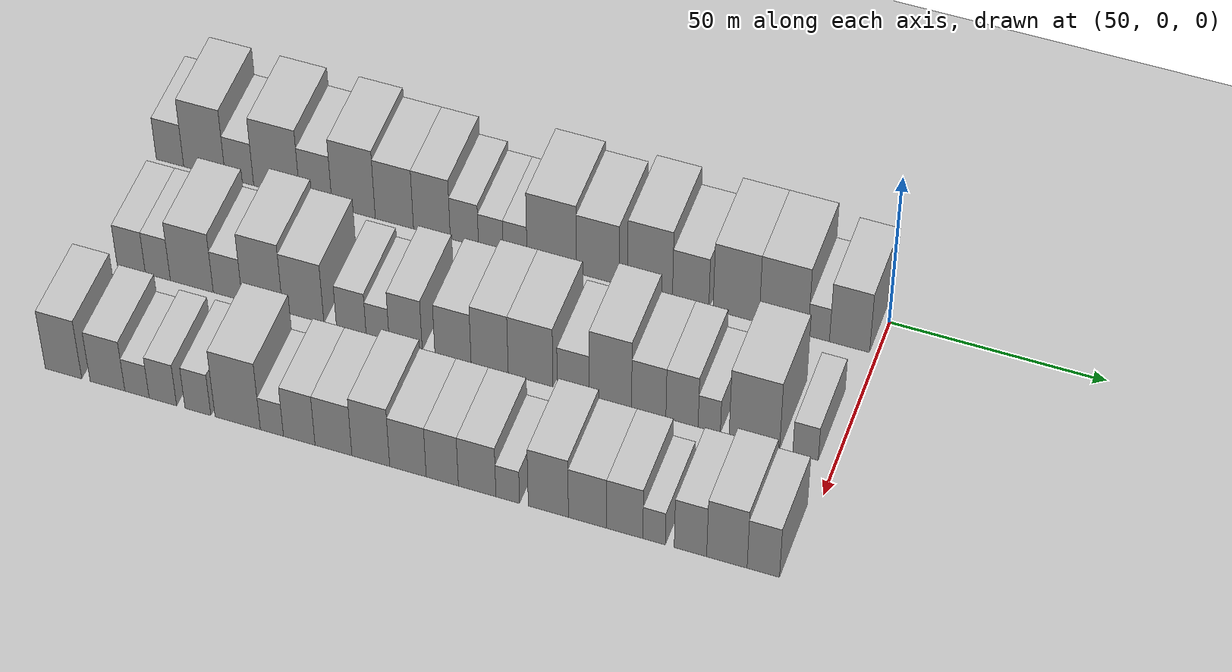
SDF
<sdf version="1.6">
 <world name="default">
  <include><name>ground_plane_1</name><uri>model://HANNAS_ground_plane</uri></include>
  <include>
   <name>ground_plane_2</name>
   <uri>model://HANNAS_ground_plane</uri>
   <pose>100 0 0  0 0 0</pose>
  </include>
  <model name="building_21">
   <static>1</static>
   <pose>50.0000 -169.8857 0 0.000000 0.000000 0.000000</pose>
   <link name="link">
    <pose>0 0 7.50 0 0 0</pose>
    <collision name="collision"><geometry><box><size>20.0000 6.8331 15.0000</size></box></geometry></collision>
    <visual name="visual">
     <cast_shadows>0</cast_shadows>
     <geometry><box><size>20.0000 6.8331 15.0000</size></box></geometry>
     <material>
      <script>
       <uri>model://HANNAS_wall/materials/scripts</uri>
       <uri>model://HANNAS_wall/materials/textures</uri>
       <name>vrc/HANNAS_wall</name>
      </script>
     </material>
    </visual>
   </link>
  </model>
  <model name="building_22">
   <static>1</static>
   <pose>50.0000 -161.2846 0 0.000000 0.000000 0.000000</pose>
   <link name="link">
    <pose>0 0 12.00 0 0 0</pose>
    <collision name="collision"><geometry><box><size>20.0000 10.3690 24.0000</size></box></geometry></collision>
    <visual name="visual">
     <cast_shadows>0</cast_shadows>
     <geometry><box><size>20.0000 10.3690 24.0000</size></box></geometry>
     <material>
      <script>
       <uri>model://HANNAS_wall/materials/scripts</uri>
       <uri>model://HANNAS_wall/materials/textures</uri>
       <name>vrc/HANNAS_wall</name>
      </script>
     </material>
    </visual>
   </link>
  </model>
  <model name="building_23">
   <static>1</static>
   <pose>50.0000 -152.5934 0 0.000000 0.000000 0.000000</pose>
   <link name="link">
    <pose>0 0 7.50 0 0 0</pose>
    <collision name="collision"><geometry><box><size>20.0000 7.0134 15.0000</size></box></geometry></collision>
    <visual name="visual">
     <cast_shadows>0</cast_shadows>
     <geometry><box><size>20.0000 7.0134 15.0000</size></box></geometry>
     <material>
      <script>
       <uri>model://HANNAS_wall/materials/scripts</uri>
       <uri>model://HANNAS_wall/materials/textures</uri>
       <name>vrc/HANNAS_wall</name>
      </script>
     </material>
    </visual>
   </link>
  </model>
  <model name="building_24">
   <static>1</static>
   <pose>50.0000 -143.3795 0 0.000000 0.000000 0.000000</pose>
   <link name="link">
    <pose>0 0 12.00 0 0 0</pose>
    <collision name="collision"><geometry><box><size>20.0000 11.4144 24.0000</size></box></geometry></collision>
    <visual name="visual">
     <cast_shadows>0</cast_shadows>
     <geometry><box><size>20.0000 11.4144 24.0000</size></box></geometry>
     <material>
      <script>
       <uri>model://HANNAS_wall/materials/scripts</uri>
       <uri>model://HANNAS_wall/materials/textures</uri>
       <name>vrc/HANNAS_wall</name>
      </script>
     </material>
    </visual>
   </link>
  </model>
  <model name="building_25">
   <static>1</static>
   <pose>50.0000 -133.7140 0 0.000000 0.000000 0.000000</pose>
   <link name="link">
    <pose>0 0 9.00 0 0 0</pose>
    <collision name="collision"><geometry><box><size>20.0000 7.9168 18.0000</size></box></geometry></collision>
    <visual name="visual">
     <cast_shadows>0</cast_shadows>
     <geometry><box><size>20.0000 7.9168 18.0000</size></box></geometry>
     <material>
      <script>
       <uri>model://HANNAS_wall/materials/scripts</uri>
       <uri>model://HANNAS_wall/materials/textures</uri>
       <name>vrc/HANNAS_wall</name>
      </script>
     </material>
    </visual>
   </link>
  </model>
  <model name="building_26">
   <static>1</static>
   <pose>50.0000 -124.4781 0 0.000000 0.000000 0.000000</pose>
   <link name="link">
    <pose>0 0 12.00 0 0 0</pose>
    <collision name="collision"><geometry><box><size>20.0000 10.5550 24.0000</size></box></geometry></collision>
    <visual name="visual">
     <cast_shadows>0</cast_shadows>
     <geometry><box><size>20.0000 10.5550 24.0000</size></box></geometry>
     <material>
      <script>
       <uri>model://HANNAS_wall/materials/scripts</uri>
       <uri>model://HANNAS_wall/materials/textures</uri>
       <name>vrc/HANNAS_wall</name>
      </script>
     </material>
    </visual>
   </link>
  </model>
  <model name="building_27">
   <static>1</static>
   <pose>50.0000 -114.5449 0 0.000000 0.000000 0.000000</pose>
   <link name="link">
    <pose>0 0 10.50 0 0 0</pose>
    <collision name="collision"><geometry><box><size>20.0000 9.3114 21.0000</size></box></geometry></collision>
    <visual name="visual">
     <cast_shadows>0</cast_shadows>
     <geometry><box><size>20.0000 9.3114 21.0000</size></box></geometry>
     <material>
      <script>
       <uri>model://HANNAS_wall/materials/scripts</uri>
       <uri>model://HANNAS_wall/materials/textures</uri>
       <name>vrc/HANNAS_wall</name>
      </script>
     </material>
    </visual>
   </link>
  </model>
  <model name="building_28">
   <static>1</static>
   <pose>50.0000 -105.4226 0 0.000000 0.000000 0.000000</pose>
   <link name="link">
    <pose>0 0 10.50 0 0 0</pose>
    <collision name="collision"><geometry><box><size>20.0000 8.9332 21.0000</size></box></geometry></collision>
    <visual name="visual">
     <cast_shadows>0</cast_shadows>
     <geometry><box><size>20.0000 8.9332 21.0000</size></box></geometry>
     <material>
      <script>
       <uri>model://HANNAS_wall/materials/scripts</uri>
       <uri>model://HANNAS_wall/materials/textures</uri>
       <name>vrc/HANNAS_wall</name>
      </script>
     </material>
    </visual>
   </link>
  </model>
  <model name="building_29">
   <static>1</static>
   <pose>50.0000 -97.5492 0 0.000000 0.000000 0.000000</pose>
   <link name="link">
    <pose>0 0 7.50 0 0 0</pose>
    <collision name="collision"><geometry><box><size>20.0000 6.8135 15.0000</size></box></geometry></collision>
    <visual name="visual">
     <cast_shadows>0</cast_shadows>
     <geometry><box><size>20.0000 6.8135 15.0000</size></box></geometry>
     <material>
      <script>
       <uri>model://HANNAS_wall/materials/scripts</uri>
       <uri>model://HANNAS_wall/materials/textures</uri>
       <name>vrc/HANNAS_wall</name>
      </script>
     </material>
    </visual>
   </link>
  </model>
  <model name="building_30">
   <static>1</static>
   <pose>50.0000 -91.1669 0 0.000000 0.000000 0.000000</pose>
   <link name="link">
    <pose>0 0 6.00 0 0 0</pose>
    <collision name="collision"><geometry><box><size>20.0000 5.9512 12.0000</size></box></geometry></collision>
    <visual name="visual">
     <cast_shadows>0</cast_shadows>
     <geometry><box><size>20.0000 5.9512 12.0000</size></box></geometry>
     <material>
      <script>
       <uri>model://HANNAS_wall/materials/scripts</uri>
       <uri>model://HANNAS_wall/materials/textures</uri>
       <name>vrc/HANNAS_wall</name>
      </script>
     </material>
    </visual>
   </link>
  </model>
  <model name="building_31">
   <static>1</static>
   <pose>50.0000 -85.3227 0 0.000000 0.000000 0.000000</pose>
   <link name="link">
    <pose>0 0 6.00 0 0 0</pose>
    <collision name="collision"><geometry><box><size>20.0000 5.7373 12.0000</size></box></geometry></collision>
    <visual name="visual">
     <cast_shadows>0</cast_shadows>
     <geometry><box><size>20.0000 5.7373 12.0000</size></box></geometry>
     <material>
      <script>
       <uri>model://HANNAS_wall/materials/scripts</uri>
       <uri>model://HANNAS_wall/materials/textures</uri>
       <name>vrc/HANNAS_wall</name>
      </script>
     </material>
    </visual>
   </link>
  </model>
  <model name="building_32">
   <static>1</static>
   <pose>50.0000 -76.5606 0 0.000000 0.000000 0.000000</pose>
   <link name="link">
    <pose>0 0 12.00 0 0 0</pose>
    <collision name="collision"><geometry><box><size>20.0000 11.7869 24.0000</size></box></geometry></collision>
    <visual name="visual">
     <cast_shadows>0</cast_shadows>
     <geometry><box><size>20.0000 11.7869 24.0000</size></box></geometry>
     <material>
      <script>
       <uri>model://HANNAS_wall/materials/scripts</uri>
       <uri>model://HANNAS_wall/materials/textures</uri>
       <name>vrc/HANNAS_wall</name>
      </script>
     </material>
    </visual>
   </link>
  </model>
  <model name="building_33">
   <static>1</static>
   <pose>50.0000 -65.5754 0 0.000000 0.000000 0.000000</pose>
   <link name="link">
    <pose>0 0 10.50 0 0 0</pose>
    <collision name="collision"><geometry><box><size>20.0000 10.1834 21.0000</size></box></geometry></collision>
    <visual name="visual">
     <cast_shadows>0</cast_shadows>
     <geometry><box><size>20.0000 10.1834 21.0000</size></box></geometry>
     <material>
      <script>
       <uri>model://HANNAS_wall/materials/scripts</uri>
       <uri>model://HANNAS_wall/materials/textures</uri>
       <name>vrc/HANNAS_wall</name>
      </script>
     </material>
    </visual>
   </link>
  </model>
  <model name="building_34">
   <static>1</static>
   <pose>50.0000 -53.1653 0 0.000000 0.000000 0.000000</pose>
   <link name="link">
    <pose>0 0 12.00 0 0 0</pose>
    <collision name="collision"><geometry><box><size>20.0000 10.6368 24.0000</size></box></geometry></collision>
    <visual name="visual">
     <cast_shadows>0</cast_shadows>
     <geometry><box><size>20.0000 10.6368 24.0000</size></box></geometry>
     <material>
      <script>
       <uri>model://HANNAS_wall/materials/scripts</uri>
       <uri>model://HANNAS_wall/materials/textures</uri>
       <name>vrc/HANNAS_wall</name>
      </script>
     </material>
    </visual>
   </link>
  </model>
  <model name="building_35">
   <static>1</static>
   <pose>50.0000 -43.5579 0 0.000000 0.000000 0.000000</pose>
   <link name="link">
    <pose>0 0 9.00 0 0 0</pose>
    <collision name="collision"><geometry><box><size>20.0000 8.5779 18.0000</size></box></geometry></collision>
    <visual name="visual">
     <cast_shadows>0</cast_shadows>
     <geometry><box><size>20.0000 8.5779 18.0000</size></box></geometry>
     <material>
      <script>
       <uri>model://HANNAS_wall/materials/scripts</uri>
       <uri>model://HANNAS_wall/materials/textures</uri>
       <name>vrc/HANNAS_wall</name>
      </script>
     </material>
    </visual>
   </link>
  </model>
  <model name="building_36">
   <static>1</static>
   <pose>50.0000 -32.8664 0 0.000000 0.000000 0.000000</pose>
   <link name="link">
    <pose>0 0 12.00 0 0 0</pose>
    <collision name="collision"><geometry><box><size>20.0000 10.8051 24.0000</size></box></geometry></collision>
    <visual name="visual">
     <cast_shadows>0</cast_shadows>
     <geometry><box><size>20.0000 10.8051 24.0000</size></box></geometry>
     <material>
      <script>
       <uri>model://HANNAS_wall/materials/scripts</uri>
       <uri>model://HANNAS_wall/materials/textures</uri>
       <name>vrc/HANNAS_wall</name>
      </script>
     </material>
    </visual>
   </link>
  </model>
  <model name="building_37">
   <static>1</static>
   <pose>50.0000 -21.7463 0 0.000000 0.000000 0.000000</pose>
   <link name="link">
    <pose>0 0 12.00 0 0 0</pose>
    <collision name="collision"><geometry><box><size>20.0000 11.4351 24.0000</size></box></geometry></collision>
    <visual name="visual">
     <cast_shadows>0</cast_shadows>
     <geometry><box><size>20.0000 11.4351 24.0000</size></box></geometry>
     <material>
      <script>
       <uri>model://HANNAS_wall/materials/scripts</uri>
       <uri>model://HANNAS_wall/materials/textures</uri>
       <name>vrc/HANNAS_wall</name>
      </script>
     </material>
    </visual>
   </link>
  </model>
  <model name="building_38">
   <static>1</static>
   <pose>50.0000 -13.5464 0 0.000000 0.000000 0.000000</pose>
   <link name="link">
    <pose>0 0 6.00 0 0 0</pose>
    <collision name="collision"><geometry><box><size>20.0000 4.9647 12.0000</size></box></geometry></collision>
    <visual name="visual">
     <cast_shadows>0</cast_shadows>
     <geometry><box><size>20.0000 4.9647 12.0000</size></box></geometry>
     <material>
      <script>
       <uri>model://HANNAS_wall/materials/scripts</uri>
       <uri>model://HANNAS_wall/materials/textures</uri>
       <name>vrc/HANNAS_wall</name>
      </script>
     </material>
    </visual>
   </link>
  </model>
  <model name="building_39">
   <static>1</static>
   <pose>50.0000 -6.4046 0 0.000000 0.000000 0.000000</pose>
   <link name="link">
    <pose>0 0 10.50 0 0 0</pose>
    <collision name="collision"><geometry><box><size>20.0000 9.3189 21.0000</size></box></geometry></collision>
    <visual name="visual">
     <cast_shadows>0</cast_shadows>
     <geometry><box><size>20.0000 9.3189 21.0000</size></box></geometry>
     <material>
      <script>
       <uri>model://HANNAS_wall/materials/scripts</uri>
       <uri>model://HANNAS_wall/materials/textures</uri>
       <name>vrc/HANNAS_wall</name>
      </script>
     </material>
    </visual>
   </link>
  </model>
  <model name="building_100">
   <static>1</static>
   <pose>82.0000 -165.7786 0 0.000000 0.000000 0.000000</pose>
   <link name="link">
    <pose>0 0 7.50 0 0 0</pose>
    <collision name="collision"><geometry><box><size>20.0000 6.8896 15.0000</size></box></geometry></collision>
    <visual name="visual">
     <cast_shadows>0</cast_shadows>
     <geometry><box><size>20.0000 6.8896 15.0000</size></box></geometry>
     <material>
      <script>
       <uri>model://HANNAS_wall/materials/scripts</uri>
       <uri>model://HANNAS_wall/materials/textures</uri>
       <name>vrc/HANNAS_wall</name>
      </script>
     </material>
    </visual>
   </link>
  </model>
  <model name="building_101">
   <static>1</static>
   <pose>82.0000 -159.2787 0 0.000000 0.000000 0.000000</pose>
   <link name="link">
    <pose>0 0 7.50 0 0 0</pose>
    <collision name="collision"><geometry><box><size>20.0000 6.1103 15.0000</size></box></geometry></collision>
    <visual name="visual">
     <cast_shadows>0</cast_shadows>
     <geometry><box><size>20.0000 6.1103 15.0000</size></box></geometry>
     <material>
      <script>
       <uri>model://HANNAS_wall/materials/scripts</uri>
       <uri>model://HANNAS_wall/materials/textures</uri>
       <name>vrc/HANNAS_wall</name>
      </script>
     </material>
    </visual>
   </link>
  </model>
  <model name="building_102">
   <static>1</static>
   <pose>82.0000 -151.0069 0 0.000000 0.000000 0.000000</pose>
   <link name="link">
    <pose>0 0 10.50 0 0 0</pose>
    <collision name="collision"><geometry><box><size>20.0000 10.4333 21.0000</size></box></geometry></collision>
    <visual name="visual">
     <cast_shadows>0</cast_shadows>
     <geometry><box><size>20.0000 10.4333 21.0000</size></box></geometry>
     <material>
      <script>
       <uri>model://HANNAS_wall/materials/scripts</uri>
       <uri>model://HANNAS_wall/materials/textures</uri>
       <name>vrc/HANNAS_wall</name>
      </script>
     </material>
    </visual>
   </link>
  </model>
  <model name="building_103">
   <static>1</static>
   <pose>82.0000 -142.2782 0 0.000000 0.000000 0.000000</pose>
   <link name="link">
    <pose>0 0 7.50 0 0 0</pose>
    <collision name="collision"><geometry><box><size>20.0000 7.0240 15.0000</size></box></geometry></collision>
    <visual name="visual">
     <cast_shadows>0</cast_shadows>
     <geometry><box><size>20.0000 7.0240 15.0000</size></box></geometry>
     <material>
      <script>
       <uri>model://HANNAS_wall/materials/scripts</uri>
       <uri>model://HANNAS_wall/materials/textures</uri>
       <name>vrc/HANNAS_wall</name>
      </script>
     </material>
    </visual>
   </link>
  </model>
  <model name="building_104">
   <static>1</static>
   <pose>82.0000 -133.8685 0 0.000000 0.000000 0.000000</pose>
   <link name="link">
    <pose>0 0 12.00 0 0 0</pose>
    <collision name="collision"><geometry><box><size>20.0000 9.7954 24.0000</size></box></geometry></collision>
    <visual name="visual">
     <cast_shadows>0</cast_shadows>
     <geometry><box><size>20.0000 9.7954 24.0000</size></box></geometry>
     <material>
      <script>
       <uri>model://HANNAS_wall/materials/scripts</uri>
       <uri>model://HANNAS_wall/materials/textures</uri>
       <name>vrc/HANNAS_wall</name>
      </script>
     </material>
    </visual>
   </link>
  </model>
  <model name="building_105">
   <static>1</static>
   <pose>82.0000 -124.0394 0 0.000000 0.000000 0.000000</pose>
   <link name="link">
    <pose>0 0 10.50 0 0 0</pose>
    <collision name="collision"><geometry><box><size>20.0000 9.8627 21.0000</size></box></geometry></collision>
    <visual name="visual">
     <cast_shadows>0</cast_shadows>
     <geometry><box><size>20.0000 9.8627 21.0000</size></box></geometry>
     <material>
      <script>
       <uri>model://HANNAS_wall/materials/scripts</uri>
       <uri>model://HANNAS_wall/materials/textures</uri>
       <name>vrc/HANNAS_wall</name>
      </script>
     </material>
    </visual>
   </link>
  </model>
  <model name="building_106">
   <static>1</static>
   <pose>82.0000 -112.5568 0 0.000000 0.000000 0.000000</pose>
   <link name="link">
    <pose>0 0 7.50 0 0 0</pose>
    <collision name="collision"><geometry><box><size>20.0000 7.1024 15.0000</size></box></geometry></collision>
    <visual name="visual">
     <cast_shadows>0</cast_shadows>
     <geometry><box><size>20.0000 7.1024 15.0000</size></box></geometry>
     <material>
      <script>
       <uri>model://HANNAS_wall/materials/scripts</uri>
       <uri>model://HANNAS_wall/materials/textures</uri>
       <name>vrc/HANNAS_wall</name>
      </script>
     </material>
    </visual>
   </link>
  </model>
  <model name="building_107">
   <static>1</static>
   <pose>82.0000 -106.2558 0 0.000000 0.000000 0.000000</pose>
   <link name="link">
    <pose>0 0 6.00 0 0 0</pose>
    <collision name="collision"><geometry><box><size>20.0000 5.4996 12.0000</size></box></geometry></collision>
    <visual name="visual">
     <cast_shadows>0</cast_shadows>
     <geometry><box><size>20.0000 5.4996 12.0000</size></box></geometry>
     <material>
      <script>
       <uri>model://HANNAS_wall/materials/scripts</uri>
       <uri>model://HANNAS_wall/materials/textures</uri>
       <name>vrc/HANNAS_wall</name>
      </script>
     </material>
    </visual>
   </link>
  </model>
  <model name="building_108">
   <static>1</static>
   <pose>82.0000 -99.5862 0 0.000000 0.000000 0.000000</pose>
   <link name="link">
    <pose>0 0 9.00 0 0 0</pose>
    <collision name="collision"><geometry><box><size>20.0000 7.8396 18.0000</size></box></geometry></collision>
    <visual name="visual">
     <cast_shadows>0</cast_shadows>
     <geometry><box><size>20.0000 7.8396 18.0000</size></box></geometry>
     <material>
      <script>
       <uri>model://HANNAS_wall/materials/scripts</uri>
       <uri>model://HANNAS_wall/materials/textures</uri>
       <name>vrc/HANNAS_wall</name>
      </script>
     </material>
    </visual>
   </link>
  </model>
  <model name="building_109">
   <static>1</static>
   <pose>82.0000 -88.3826 0 0.000000 0.000000 0.000000</pose>
   <link name="link">
    <pose>0 0 9.00 0 0 0</pose>
    <collision name="collision"><geometry><box><size>20.0000 8.5676 18.0000</size></box></geometry></collision>
    <visual name="visual">
     <cast_shadows>0</cast_shadows>
     <geometry><box><size>20.0000 8.5676 18.0000</size></box></geometry>
     <material>
      <script>
       <uri>model://HANNAS_wall/materials/scripts</uri>
       <uri>model://HANNAS_wall/materials/textures</uri>
       <name>vrc/HANNAS_wall</name>
      </script>
     </material>
    </visual>
   </link>
  </model>
  <model name="building_110">
   <static>1</static>
   <pose>82.0000 -79.7298 0 0.000000 0.000000 0.000000</pose>
   <link name="link">
    <pose>0 0 10.50 0 0 0</pose>
    <collision name="collision"><geometry><box><size>20.0000 8.7380 21.0000</size></box></geometry></collision>
    <visual name="visual">
     <cast_shadows>0</cast_shadows>
     <geometry><box><size>20.0000 8.7380 21.0000</size></box></geometry>
     <material>
      <script>
       <uri>model://HANNAS_wall/materials/scripts</uri>
       <uri>model://HANNAS_wall/materials/textures</uri>
       <name>vrc/HANNAS_wall</name>
      </script>
     </material>
    </visual>
   </link>
  </model>
  <model name="building_111">
   <static>1</static>
   <pose>82.0000 -70.1274 0 0.000000 0.000000 0.000000</pose>
   <link name="link">
    <pose>0 0 10.50 0 0 0</pose>
    <collision name="collision"><geometry><box><size>20.0000 10.4667 21.0000</size></box></geometry></collision>
    <visual name="visual">
     <cast_shadows>0</cast_shadows>
     <geometry><box><size>20.0000 10.4667 21.0000</size></box></geometry>
     <material>
      <script>
       <uri>model://HANNAS_wall/materials/scripts</uri>
       <uri>model://HANNAS_wall/materials/textures</uri>
       <name>vrc/HANNAS_wall</name>
      </script>
     </material>
    </visual>
   </link>
  </model>
  <model name="building_112">
   <static>1</static>
   <pose>82.0000 -60.1732 0 0.000000 0.000000 0.000000</pose>
   <link name="link">
    <pose>0 0 7.50 0 0 0</pose>
    <collision name="collision"><geometry><box><size>20.0000 7.4416 15.0000</size></box></geometry></collision>
    <visual name="visual">
     <cast_shadows>0</cast_shadows>
     <geometry><box><size>20.0000 7.4416 15.0000</size></box></geometry>
     <material>
      <script>
       <uri>model://HANNAS_wall/materials/scripts</uri>
       <uri>model://HANNAS_wall/materials/textures</uri>
       <name>vrc/HANNAS_wall</name>
      </script>
     </material>
    </visual>
   </link>
  </model>
  <model name="building_113">
   <static>1</static>
   <pose>82.0000 -51.5364 0 0.000000 0.000000 0.000000</pose>
   <link name="link">
    <pose>0 0 12.00 0 0 0</pose>
    <collision name="collision"><geometry><box><size>20.0000 9.8321 24.0000</size></box></geometry></collision>
    <visual name="visual">
     <cast_shadows>0</cast_shadows>
     <geometry><box><size>20.0000 9.8321 24.0000</size></box></geometry>
     <material>
      <script>
       <uri>model://HANNAS_wall/materials/scripts</uri>
       <uri>model://HANNAS_wall/materials/textures</uri>
       <name>vrc/HANNAS_wall</name>
      </script>
     </material>
    </visual>
   </link>
  </model>
  <model name="building_114">
   <static>1</static>
   <pose>82.0000 -42.6458 0 0.000000 0.000000 0.000000</pose>
   <link name="link">
    <pose>0 0 9.00 0 0 0</pose>
    <collision name="collision"><geometry><box><size>20.0000 7.9490 18.0000</size></box></geometry></collision>
    <visual name="visual">
     <cast_shadows>0</cast_shadows>
     <geometry><box><size>20.0000 7.9490 18.0000</size></box></geometry>
     <material>
      <script>
       <uri>model://HANNAS_wall/materials/scripts</uri>
       <uri>model://HANNAS_wall/materials/textures</uri>
       <name>vrc/HANNAS_wall</name>
      </script>
     </material>
    </visual>
   </link>
  </model>
  <model name="building_115">
   <static>1</static>
   <pose>82.0000 -34.9589 0 0.000000 0.000000 0.000000</pose>
   <link name="link">
    <pose>0 0 9.00 0 0 0</pose>
    <collision name="collision"><geometry><box><size>20.0000 7.4248 18.0000</size></box></geometry></collision>
    <visual name="visual">
     <cast_shadows>0</cast_shadows>
     <geometry><box><size>20.0000 7.4248 18.0000</size></box></geometry>
     <material>
      <script>
       <uri>model://HANNAS_wall/materials/scripts</uri>
       <uri>model://HANNAS_wall/materials/textures</uri>
       <name>vrc/HANNAS_wall</name>
      </script>
     </material>
    </visual>
   </link>
  </model>
  <model name="building_116">
   <static>1</static>
   <pose>82.0000 -28.6866 0 0.000000 0.000000 0.000000</pose>
   <link name="link">
    <pose>0 0 6.00 0 0 0</pose>
    <collision name="collision"><geometry><box><size>20.0000 5.1197 12.0000</size></box></geometry></collision>
    <visual name="visual">
     <cast_shadows>0</cast_shadows>
     <geometry><box><size>20.0000 5.1197 12.0000</size></box></geometry>
     <material>
      <script>
       <uri>model://HANNAS_wall/materials/scripts</uri>
       <uri>model://HANNAS_wall/materials/textures</uri>
       <name>vrc/HANNAS_wall</name>
      </script>
     </material>
    </visual>
   </link>
  </model>
  <model name="building_117">
   <static>1</static>
   <pose>82.0000 -18.3527 0 0.000000 0.000000 0.000000</pose>
   <link name="link">
    <pose>0 0 12.00 0 0 0</pose>
    <collision name="collision"><geometry><box><size>20.0000 11.5481 24.0000</size></box></geometry></collision>
    <visual name="visual">
     <cast_shadows>0</cast_shadows>
     <geometry><box><size>20.0000 11.5481 24.0000</size></box></geometry>
     <material>
      <script>
       <uri>model://HANNAS_wall/materials/scripts</uri>
       <uri>model://HANNAS_wall/materials/textures</uri>
       <name>vrc/HANNAS_wall</name>
      </script>
     </material>
    </visual>
   </link>
  </model>
  <model name="building_118">
   <static>1</static>
   <pose>82.0000 -6.6771 0 0.000000 0.000000 0.000000</pose>
   <link name="link">
    <pose>0 0 6.00 0 0 0</pose>
    <collision name="collision"><geometry><box><size>20.0000 5.8031 12.0000</size></box></geometry></collision>
    <visual name="visual">
     <cast_shadows>0</cast_shadows>
     <geometry><box><size>20.0000 5.8031 12.0000</size></box></geometry>
     <material>
      <script>
       <uri>model://HANNAS_wall/materials/scripts</uri>
       <uri>model://HANNAS_wall/materials/textures</uri>
       <name>vrc/HANNAS_wall</name>
      </script>
     </material>
    </visual>
   </link>
  </model>
  <model name="building_178">
   <static>1</static>
   <pose>114.0000 -168.2316 0 0.000000 0.000000 0.000000</pose>
   <link name="link">
    <pose>0 0 10.50 0 0 0</pose>
    <collision name="collision"><geometry><box><size>20.0000 8.7683 21.0000</size></box></geometry></collision>
    <visual name="visual">
     <cast_shadows>0</cast_shadows>
     <geometry><box><size>20.0000 8.7683 21.0000</size></box></geometry>
     <material>
      <script>
       <uri>model://HANNAS_wall/materials/scripts</uri>
       <uri>model://HANNAS_wall/materials/textures</uri>
       <name>vrc/HANNAS_wall</name>
      </script>
     </material>
    </visual>
   </link>
  </model>
  <model name="building_179">
   <static>1</static>
   <pose>114.0000 -157.6815 0 0.000000 0.000000 0.000000</pose>
   <link name="link">
    <pose>0 0 9.00 0 0 0</pose>
    <collision name="collision"><geometry><box><size>20.0000 8.3320 18.0000</size></box></geometry></collision>
    <visual name="visual">
     <cast_shadows>0</cast_shadows>
     <geometry><box><size>20.0000 8.3320 18.0000</size></box></geometry>
     <material>
      <script>
       <uri>model://HANNAS_wall/materials/scripts</uri>
       <uri>model://HANNAS_wall/materials/textures</uri>
       <name>vrc/HANNAS_wall</name>
      </script>
     </material>
    </visual>
   </link>
  </model>
  <model name="building_180">
   <static>1</static>
   <pose>114.0000 -150.6192 0 0.000000 0.000000 0.000000</pose>
   <link name="link">
    <pose>0 0 6.00 0 0 0</pose>
    <collision name="collision"><geometry><box><size>20.0000 5.7927 12.0000</size></box></geometry></collision>
    <visual name="visual">
     <cast_shadows>0</cast_shadows>
     <geometry><box><size>20.0000 5.7927 12.0000</size></box></geometry>
     <material>
      <script>
       <uri>model://HANNAS_wall/materials/scripts</uri>
       <uri>model://HANNAS_wall/materials/textures</uri>
       <name>vrc/HANNAS_wall</name>
      </script>
     </material>
    </visual>
   </link>
  </model>
  <model name="building_181">
   <static>1</static>
   <pose>114.0000 -144.4515 0 0.000000 0.000000 0.000000</pose>
   <link name="link">
    <pose>0 0 7.50 0 0 0</pose>
    <collision name="collision"><geometry><box><size>20.0000 6.5427 15.0000</size></box></geometry></collision>
    <visual name="visual">
     <cast_shadows>0</cast_shadows>
     <geometry><box><size>20.0000 6.5427 15.0000</size></box></geometry>
     <material>
      <script>
       <uri>model://HANNAS_wall/materials/scripts</uri>
       <uri>model://HANNAS_wall/materials/textures</uri>
       <name>vrc/HANNAS_wall</name>
      </script>
     </material>
    </visual>
   </link>
  </model>
  <model name="building_182">
   <static>1</static>
   <pose>114.0000 -136.1171 0 0.000000 0.000000 0.000000</pose>
   <link name="link">
    <pose>0 0 7.50 0 0 0</pose>
    <collision name="collision"><geometry><box><size>20.0000 6.1261 15.0000</size></box></geometry></collision>
    <visual name="visual">
     <cast_shadows>0</cast_shadows>
     <geometry><box><size>20.0000 6.1261 15.0000</size></box></geometry>
     <material>
      <script>
       <uri>model://HANNAS_wall/materials/scripts</uri>
       <uri>model://HANNAS_wall/materials/textures</uri>
       <name>vrc/HANNAS_wall</name>
      </script>
     </material>
    </visual>
   </link>
  </model>
  <model name="building_183">
   <static>1</static>
   <pose>114.0000 -126.7068 0 0.000000 0.000000 0.000000</pose>
   <link name="link">
    <pose>0 0 12.00 0 0 0</pose>
    <collision name="collision"><geometry><box><size>20.0000 10.6946 24.0000</size></box></geometry></collision>
    <visual name="visual">
     <cast_shadows>0</cast_shadows>
     <geometry><box><size>20.0000 10.6946 24.0000</size></box></geometry>
     <material>
      <script>
       <uri>model://HANNAS_wall/materials/scripts</uri>
       <uri>model://HANNAS_wall/materials/textures</uri>
       <name>vrc/HANNAS_wall</name>
      </script>
     </material>
    </visual>
   </link>
  </model>
  <model name="building_184">
   <static>1</static>
   <pose>114.0000 -118.6415 0 0.000000 0.000000 0.000000</pose>
   <link name="link">
    <pose>0 0 6.00 0 0 0</pose>
    <collision name="collision"><geometry><box><size>20.0000 5.4360 12.0000</size></box></geometry></collision>
    <visual name="visual">
     <cast_shadows>0</cast_shadows>
     <geometry><box><size>20.0000 5.4360 12.0000</size></box></geometry>
     <material>
      <script>
       <uri>model://HANNAS_wall/materials/scripts</uri>
       <uri>model://HANNAS_wall/materials/textures</uri>
       <name>vrc/HANNAS_wall</name>
      </script>
     </material>
    </visual>
   </link>
  </model>
  <model name="building_185">
   <static>1</static>
   <pose>114.0000 -112.2209 0 0.000000 0.000000 0.000000</pose>
   <link name="link">
    <pose>0 0 9.00 0 0 0</pose>
    <collision name="collision"><geometry><box><size>20.0000 7.4052 18.0000</size></box></geometry></collision>
    <visual name="visual">
     <cast_shadows>0</cast_shadows>
     <geometry><box><size>20.0000 7.4052 18.0000</size></box></geometry>
     <material>
      <script>
       <uri>model://HANNAS_wall/materials/scripts</uri>
       <uri>model://HANNAS_wall/materials/textures</uri>
       <name>vrc/HANNAS_wall</name>
      </script>
     </material>
    </visual>
   </link>
  </model>
  <model name="building_186">
   <static>1</static>
   <pose>114.0000 -104.2059 0 0.000000 0.000000 0.000000</pose>
   <link name="link">
    <pose>0 0 9.00 0 0 0</pose>
    <collision name="collision"><geometry><box><size>20.0000 8.6249 18.0000</size></box></geometry></collision>
    <visual name="visual">
     <cast_shadows>0</cast_shadows>
     <geometry><box><size>20.0000 8.6249 18.0000</size></box></geometry>
     <material>
      <script>
       <uri>model://HANNAS_wall/materials/scripts</uri>
       <uri>model://HANNAS_wall/materials/textures</uri>
       <name>vrc/HANNAS_wall</name>
      </script>
     </material>
    </visual>
   </link>
  </model>
  <model name="building_187">
   <static>1</static>
   <pose>114.0000 -95.5020 0 0.000000 0.000000 0.000000</pose>
   <link name="link">
    <pose>0 0 10.50 0 0 0</pose>
    <collision name="collision"><geometry><box><size>20.0000 8.7829 21.0000</size></box></geometry></collision>
    <visual name="visual">
     <cast_shadows>0</cast_shadows>
     <geometry><box><size>20.0000 8.7829 21.0000</size></box></geometry>
     <material>
      <script>
       <uri>model://HANNAS_wall/materials/scripts</uri>
       <uri>model://HANNAS_wall/materials/textures</uri>
       <name>vrc/HANNAS_wall</name>
      </script>
     </material>
    </visual>
   </link>
  </model>
  <model name="building_188">
   <static>1</static>
   <pose>114.0000 -86.8810 0 0.000000 0.000000 0.000000</pose>
   <link name="link">
    <pose>0 0 9.00 0 0 0</pose>
    <collision name="collision"><geometry><box><size>20.0000 8.4590 18.0000</size></box></geometry></collision>
    <visual name="visual">
     <cast_shadows>0</cast_shadows>
     <geometry><box><size>20.0000 8.4590 18.0000</size></box></geometry>
     <material>
      <script>
       <uri>model://HANNAS_wall/materials/scripts</uri>
       <uri>model://HANNAS_wall/materials/textures</uri>
       <name>vrc/HANNAS_wall</name>
      </script>
     </material>
    </visual>
   </link>
  </model>
  <model name="building_189">
   <static>1</static>
   <pose>114.0000 -78.9339 0 0.000000 0.000000 0.000000</pose>
   <link name="link">
    <pose>0 0 9.00 0 0 0</pose>
    <collision name="collision"><geometry><box><size>20.0000 7.4352 18.0000</size></box></geometry></collision>
    <visual name="visual">
     <cast_shadows>0</cast_shadows>
     <geometry><box><size>20.0000 7.4352 18.0000</size></box></geometry>
     <material>
      <script>
       <uri>model://HANNAS_wall/materials/scripts</uri>
       <uri>model://HANNAS_wall/materials/textures</uri>
       <name>vrc/HANNAS_wall</name>
      </script>
     </material>
    </visual>
   </link>
  </model>
  <model name="building_190">
   <static>1</static>
   <pose>114.0000 -70.9005 0 0.000000 0.000000 0.000000</pose>
   <link name="link">
    <pose>0 0 9.00 0 0 0</pose>
    <collision name="collision"><geometry><box><size>20.0000 8.6316 18.0000</size></box></geometry></collision>
    <visual name="visual">
     <cast_shadows>0</cast_shadows>
     <geometry><box><size>20.0000 8.6316 18.0000</size></box></geometry>
     <material>
      <script>
       <uri>model://HANNAS_wall/materials/scripts</uri>
       <uri>model://HANNAS_wall/materials/textures</uri>
       <name>vrc/HANNAS_wall</name>
      </script>
     </material>
    </visual>
   </link>
  </model>
  <model name="building_191">
   <static>1</static>
   <pose>114.0000 -63.8808 0 0.000000 0.000000 0.000000</pose>
   <link name="link">
    <pose>0 0 6.00 0 0 0</pose>
    <collision name="collision"><geometry><box><size>20.0000 5.4078 12.0000</size></box></geometry></collision>
    <visual name="visual">
     <cast_shadows>0</cast_shadows>
     <geometry><box><size>20.0000 5.4078 12.0000</size></box></geometry>
     <material>
      <script>
       <uri>model://HANNAS_wall/materials/scripts</uri>
       <uri>model://HANNAS_wall/materials/textures</uri>
       <name>vrc/HANNAS_wall</name>
      </script>
     </material>
    </visual>
   </link>
  </model>
  <model name="building_192">
   <static>1</static>
   <pose>114.0000 -54.6046 0 0.000000 0.000000 0.000000</pose>
   <link name="link">
    <pose>0 0 10.50 0 0 0</pose>
    <collision name="collision"><geometry><box><size>20.0000 9.1446 21.0000</size></box></geometry></collision>
    <visual name="visual">
     <cast_shadows>0</cast_shadows>
     <geometry><box><size>20.0000 9.1446 21.0000</size></box></geometry>
     <material>
      <script>
       <uri>model://HANNAS_wall/materials/scripts</uri>
       <uri>model://HANNAS_wall/materials/textures</uri>
       <name>vrc/HANNAS_wall</name>
      </script>
     </material>
    </visual>
   </link>
  </model>
  <model name="building_193">
   <static>1</static>
   <pose>114.0000 -45.7023 0 0.000000 0.000000 0.000000</pose>
   <link name="link">
    <pose>0 0 9.00 0 0 0</pose>
    <collision name="collision"><geometry><box><size>20.0000 8.6599 18.0000</size></box></geometry></collision>
    <visual name="visual">
     <cast_shadows>0</cast_shadows>
     <geometry><box><size>20.0000 8.6599 18.0000</size></box></geometry>
     <material>
      <script>
       <uri>model://HANNAS_wall/materials/scripts</uri>
       <uri>model://HANNAS_wall/materials/textures</uri>
       <name>vrc/HANNAS_wall</name>
      </script>
     </material>
    </visual>
   </link>
  </model>
  <model name="building_194">
   <static>1</static>
   <pose>114.0000 -37.2590 0 0.000000 0.000000 0.000000</pose>
   <link name="link">
    <pose>0 0 9.00 0 0 0</pose>
    <collision name="collision"><geometry><box><size>20.0000 8.2268 18.0000</size></box></geometry></collision>
    <visual name="visual">
     <cast_shadows>0</cast_shadows>
     <geometry><box><size>20.0000 8.2268 18.0000</size></box></geometry>
     <material>
      <script>
       <uri>model://HANNAS_wall/materials/scripts</uri>
       <uri>model://HANNAS_wall/materials/textures</uri>
       <name>vrc/HANNAS_wall</name>
      </script>
     </material>
    </visual>
   </link>
  </model>
  <model name="building_195">
   <static>1</static>
   <pose>114.0000 -30.6104 0 0.000000 0.000000 0.000000</pose>
   <link name="link">
    <pose>0 0 6.00 0 0 0</pose>
    <collision name="collision"><geometry><box><size>20.0000 5.0704 12.0000</size></box></geometry></collision>
    <visual name="visual">
     <cast_shadows>0</cast_shadows>
     <geometry><box><size>20.0000 5.0704 12.0000</size></box></geometry>
     <material>
      <script>
       <uri>model://HANNAS_wall/materials/scripts</uri>
       <uri>model://HANNAS_wall/materials/textures</uri>
       <name>vrc/HANNAS_wall</name>
      </script>
     </material>
    </visual>
   </link>
  </model>
  <model name="building_196">
   <static>1</static>
   <pose>114.0000 -22.4358 0 0.000000 0.000000 0.000000</pose>
   <link name="link">
    <pose>0 0 9.00 0 0 0</pose>
    <collision name="collision"><geometry><box><size>20.0000 7.2788 18.0000</size></box></geometry></collision>
    <visual name="visual">
     <cast_shadows>0</cast_shadows>
     <geometry><box><size>20.0000 7.2788 18.0000</size></box></geometry>
     <material>
      <script>
       <uri>model://HANNAS_wall/materials/scripts</uri>
       <uri>model://HANNAS_wall/materials/textures</uri>
       <name>vrc/HANNAS_wall</name>
      </script>
     </material>
    </visual>
   </link>
  </model>
  <model name="building_197">
   <static>1</static>
   <pose>114.0000 -14.2653 0 0.000000 0.000000 0.000000</pose>
   <link name="link">
    <pose>0 0 10.50 0 0 0</pose>
    <collision name="collision"><geometry><box><size>20.0000 9.0622 21.0000</size></box></geometry></collision>
    <visual name="visual">
     <cast_shadows>0</cast_shadows>
     <geometry><box><size>20.0000 9.0622 21.0000</size></box></geometry>
     <material>
      <script>
       <uri>model://HANNAS_wall/materials/scripts</uri>
       <uri>model://HANNAS_wall/materials/textures</uri>
       <name>vrc/HANNAS_wall</name>
      </script>
     </material>
    </visual>
   </link>
  </model>
  <model name="building_198">
   <static>1</static>
   <pose>114.0000 -6.1165 0 0.000000 0.000000 0.000000</pose>
   <link name="link">
    <pose>0 0 9.00 0 0 0</pose>
    <collision name="collision"><geometry><box><size>20.0000 7.2354 18.0000</size></box></geometry></collision>
    <visual name="visual">
     <cast_shadows>0</cast_shadows>
     <geometry><box><size>20.0000 7.2354 18.0000</size></box></geometry>
     <material>
      <script>
       <uri>model://HANNAS_wall/materials/scripts</uri>
       <uri>model://HANNAS_wall/materials/textures</uri>
       <name>vrc/HANNAS_wall</name>
      </script>
     </material>
    </visual>
   </link>
  </model>
 </world>
</sdf>
